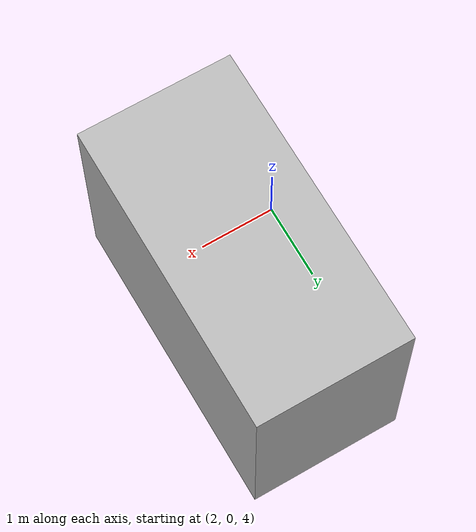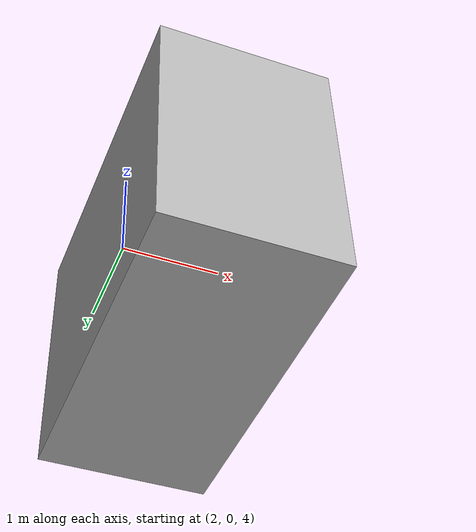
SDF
<?xml version='1.0'?>
<sdf version='1.6'>
		<model name="MyPart">
			<self_collide>true</self_collide>
			<pose>0.0 0.0 0.0 0.0 0.0 0.0</pose>
			<!-- Start of parts of the pmodel MyPart -->
			<!-- End of parts of the pmodel MyPart -->

			<!-- Start of links of the pmodel MyPart -->
			<!-- link full name is MyPart::L1 -->
			<link name="1-L1">
					<pose>3.0 1.0 5.0 0.0 0.0 0.0</pose>
					<inertial>
						<pose>0.0 0.0 0.0 0.0 0.0 0.0</pose>
						<inertia>
							<ixx>1.0</ixx>
							<ixy>0.0</ixy>
							<ixz>0.0</ixz>
							<iyy>1.0</iyy>
							<iyz>0.0</iyz>
							<izz>1.0</izz>
						</inertia>
						<mass>1.0</mass>
					</inertial>
					<!-- body full name is MyPart::L1::B1 -->
					<collision name="1--B1">
						<laser_retro>0.0</laser_retro>
						<pose>0.0 0.0 0.0 0.0 0.0 0.0</pose>
						<geometry>
							<box>
								<size>2.0 4.0 3.0</size>
							</box>
						</geometry>
						<surface>
							<bounce>
								<restitution_coefficient>0.0</restitution_coefficient>
								<threshold>100000.0</threshold>
							</bounce>
							<friction>
								<ode>
									<mu>1.0</mu>
									<mu2>1.0</mu2>
									<fdir1>0.0 0.0 0.0</fdir1>
									<slip1>0.0</slip1>
									<slip2>0.0</slip2>
								</ode>
								<torsional>
									<coefficient>1.0</coefficient>
									<surface_radius>0.0</surface_radius>
								</torsional>
							</friction>
						</surface>
					</collision>
					<visual name="1--B1">
						<laser_retro>0.0</laser_retro>
						<pose>0.0 0.0 0.0 0.0 0.0 0.0</pose>
						<geometry>
							<box>
								<size>2.0 4.0 3.0</size>
							</box>
						</geometry>
						<surface>
							<bounce>
								<restitution_coefficient>0.0</restitution_coefficient>
								<threshold>100000.0</threshold>
							</bounce>
							<friction>
								<ode>
									<mu>1.0</mu>
									<mu2>1.0</mu2>
									<fdir1>0.0 0.0 0.0</fdir1>
									<slip1>0.0</slip1>
									<slip2>0.0</slip2>
								</ode>
								<torsional>
									<coefficient>1.0</coefficient>
									<surface_radius>0.0</surface_radius>
								</torsional>
							</friction>
						</surface>
					</visual>
			</link>
			<!-- End of links of the pmodel MyPart -->

			<!-- Start of joints of the pmodel MyPart -->
			<!-- End of joints of the pmodel MyPart -->

			<!-- Start of fixed connections of the pmodel MyPart -->
			<!-- End of fixed connections of the pmodel MyPart -->
		</model>
</sdf>
